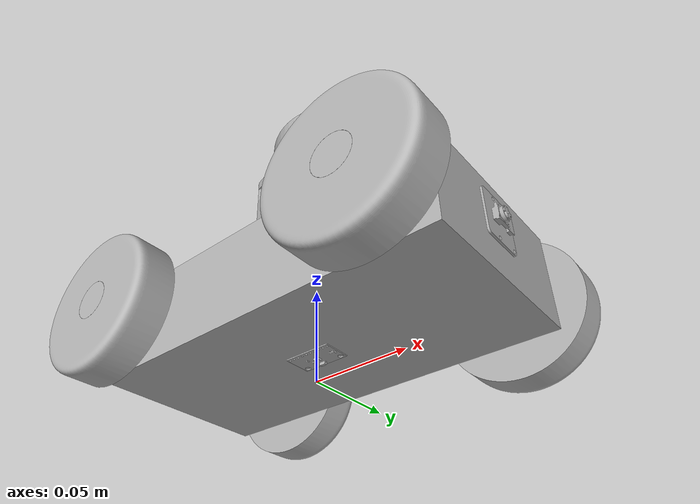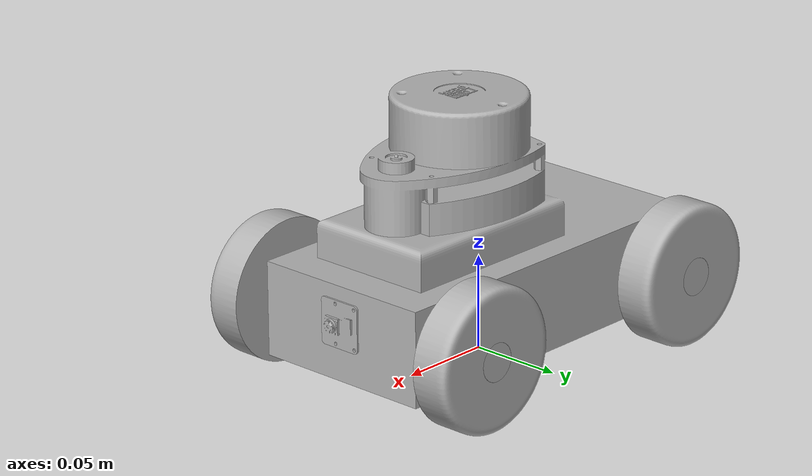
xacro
<?xml version="1.0" ?>
<robot name="ugv2" xmlns:xacro="http://www.ros.org/wiki/xacro">

<xacro:include filename="$(find ugv2_description)/urdf/materials.xacro" />
<xacro:include filename="$(find ugv2_description)/urdf/ugv2.trans" />

<xacro:include filename="$(find ugv2_description)/gazebo/ugv2_materials.gazebo" />
<xacro:include filename="$(find ugv2_description)/gazebo/ugv2_physics.gazebo" />
<xacro:include filename="$(find ugv2_description)/gazebo/ugv2_plugins.gazebo" />

<link name="base_link">
  <inertial>
    <origin rpy="0 0 0" xyz="0.0033907472402908267 -1.2294185660792603e-16 0.04205737762945809"/>
    <mass value="9.291590162574073"/>
    <inertia ixx="0.011185" ixy="0.0" ixz="-0.000965" iyy="0.032552" iyz="0.0" izz="0.037924"/>
  </inertial>
  <visual>
    <origin rpy="0 0 0" xyz="0 0 0"/>
    <geometry>
      <mesh filename="package://ugv2_description/meshes/base_link.stl" scale="0.001 0.001 0.001"/>
    </geometry>
    <material name="silver"/>
  </visual>
  <collision>
    <origin rpy="0 0 0" xyz="0 0 0"/>
    <geometry>
      <mesh filename="package://ugv2_description/meshes/base_link.stl" scale="0.001 0.001 0.001"/>
    </geometry>
  </collision>
</link>

<link name="lidar_1">
  <inertial>
    <origin rpy="0 0 0" xyz="-0.007652767991941433 0.00010612194415757128 0.027402719643241688"/>
    <mass value="1.8747231102330029"/>
    <inertia ixx="0.001113" ixy="1e-06" ixz="0.000122" iyy="0.00152" iyz="4e-06" izz="0.001534"/>
  </inertial>
  <visual>
    <origin rpy="0 0 0" xyz="-0.0275 -0.0 -0.08275"/>
    <geometry>
      <mesh filename="package://ugv2_description/meshes/lidar_1.stl" scale="0.001 0.001 0.001"/>
    </geometry>
    <material name="silver"/>
  </visual>
  <collision>
    <origin rpy="0 0 0" xyz="-0.0275 -0.0 -0.08275"/>
    <geometry>
      <mesh filename="package://ugv2_description/meshes/lidar_1.stl" scale="0.001 0.001 0.001"/>
    </geometry>
  </collision>
</link>

<link name="rb_wheel_1">
  <inertial>
    <origin rpy="0 0 0" xyz="-1.5849974110970777e-11 0.010079338741740565 4.163336342344337e-17"/>
    <mass value="0.6387176905227006"/>
    <inertia ixx="0.00026" ixy="-0.0" ixz="-0.0" iyy="0.000478" iyz="0.0" izz="0.00026"/>
  </inertial>
  <visual>
    <origin rpy="0 0 0" xyz="0.075 0.08 -0.03775"/>
    <geometry>
      <mesh filename="package://ugv2_description/meshes/rb_wheel_1.stl" scale="0.001 0.001 0.001"/>
    </geometry>
    <material name="silver"/>
  </visual>
  <collision>
    <origin rpy="0 0 0" xyz="0.075 0.08 -0.03775"/>
    <geometry>
      <mesh filename="package://ugv2_description/meshes/rb_wheel_1.stl" scale="0.001 0.001 0.001"/>
    </geometry>
  </collision>
</link>

<link name="rf_wheel_1">
  <inertial>
    <origin rpy="0 0 0" xyz="1.568842278310001e-11 0.010079338741740482 1.457167719820518e-16"/>
    <mass value="0.6387176905227065"/>
    <inertia ixx="0.00026" ixy="0.0" ixz="0.0" iyy="0.000478" iyz="0.0" izz="0.00026"/>
  </inertial>
  <visual>
    <origin rpy="0 0 0" xyz="-0.075 0.08 -0.03775"/>
    <geometry>
      <mesh filename="package://ugv2_description/meshes/rf_wheel_1.stl" scale="0.001 0.001 0.001"/>
    </geometry>
    <material name="silver"/>
  </visual>
  <collision>
    <origin rpy="0 0 0" xyz="-0.075 0.08 -0.03775"/>
    <geometry>
      <mesh filename="package://ugv2_description/meshes/rf_wheel_1.stl" scale="0.001 0.001 0.001"/>
    </geometry>
  </collision>
</link>

<link name="lb_wheel_1">
  <inertial>
    <origin rpy="0 0 0" xyz="1.0906087977158307e-09 -0.010079338740724489 -1.249000902703301e-16"/>
    <mass value="0.6387176904141518"/>
    <inertia ixx="0.00026" ixy="0.0" ixz="-0.0" iyy="0.000478" iyz="-0.0" izz="0.00026"/>
  </inertial>
  <visual>
    <origin rpy="0 0 0" xyz="0.075 -0.08 -0.03775"/>
    <geometry>
      <mesh filename="package://ugv2_description/meshes/lb_wheel_1.stl" scale="0.001 0.001 0.001"/>
    </geometry>
    <material name="silver"/>
  </visual>
  <collision>
    <origin rpy="0 0 0" xyz="0.075 -0.08 -0.03775"/>
    <geometry>
      <mesh filename="package://ugv2_description/meshes/lb_wheel_1.stl" scale="0.001 0.001 0.001"/>
    </geometry>
  </collision>
</link>

<link name="lf_wheel_1">
  <inertial>
    <origin rpy="0 0 0" xyz="-1.090447468432565e-09 -0.010079338740724475 -5.204170427930421e-16"/>
    <mass value="0.6387176904144656"/>
    <inertia ixx="0.00026" ixy="-0.0" ixz="0.0" iyy="0.000478" iyz="0.0" izz="0.00026"/>
  </inertial>
  <visual>
    <origin rpy="0 0 0" xyz="-0.075 -0.08 -0.03775"/>
    <geometry>
      <mesh filename="package://ugv2_description/meshes/lf_wheel_1.stl" scale="0.001 0.001 0.001"/>
    </geometry>
    <material name="silver"/>
  </visual>
  <collision>
    <origin rpy="0 0 0" xyz="-0.075 -0.08 -0.03775"/>
    <geometry>
      <mesh filename="package://ugv2_description/meshes/lf_wheel_1.stl" scale="0.001 0.001 0.001"/>
    </geometry>
  </collision>
</link>

<link name="pi_camera_1">
  <inertial>
    <origin rpy="0 0 0" xyz="0.0013912758702941674 -0.00038922935427077444 0.005065651333291829"/>
    <mass value="0.006742869651497955"/>
    <inertia ixx="0.0" ixy="0.0" ixz="-0.0" iyy="0.0" iyz="-0.0" izz="0.0"/>
  </inertial>
  <visual>
    <origin rpy="0 0 0" xyz="-0.1 -0.0 -0.03775"/>
    <geometry>
      <mesh filename="package://ugv2_description/meshes/pi_camera_1.stl" scale="0.001 0.001 0.001"/>
    </geometry>
    <material name="silver"/>
  </visual>
  <collision>
    <origin rpy="0 0 0" xyz="-0.1 -0.0 -0.03775"/>
    <geometry>
      <mesh filename="package://ugv2_description/meshes/pi_camera_1.stl" scale="0.001 0.001 0.001"/>
    </geometry>
  </collision>
</link>

<link name="imu_sensor_1">
  <inertial>
    <origin rpy="0 0 0" xyz="8.182177681428845e-05 -6.318495909852773e-06 0.00015585415981772544"/>
    <mass value="0.0005786974233911097"/>
    <inertia ixx="0.0" ixy="0.0" ixz="0.0" iyy="0.0" iyz="0.0" izz="0.0"/>
  </inertial>
  <visual>
    <origin rpy="0 0 0" xyz="-0.0 -0.0 -0.01275"/>
    <geometry>
      <mesh filename="package://ugv2_description/meshes/imu_sensor_1.stl" scale="0.001 0.001 0.001"/>
    </geometry>
    <material name="silver"/>
  </visual>
  <collision>
    <origin rpy="0 0 0" xyz="-0.0 -0.0 -0.01275"/>
    <geometry>
      <mesh filename="package://ugv2_description/meshes/imu_sensor_1.stl" scale="0.001 0.001 0.001"/>
    </geometry>
  </collision>
</link>

<joint name="lidar_joint" type="fixed">
  <origin rpy="0 0 0" xyz="0.0275 0.0 0.08275"/>
  <parent link="base_link"/>
  <child link="lidar_1"/>
</joint>

<joint name="rb_joint" type="continuous">
  <origin rpy="0 0 0" xyz="-0.075 -0.08 0.03775"/>
  <parent link="base_link"/>
  <child link="rb_wheel_1"/>
  <axis xyz="0.0 1.0 0.0"/>
</joint>

<joint name="rf_joint" type="continuous">
  <origin rpy="0 0 0" xyz="0.075 -0.08 0.03775"/>
  <parent link="base_link"/>
  <child link="rf_wheel_1"/>
  <axis xyz="0.0 1.0 0.0"/>
</joint>

<joint name="lb_joint" type="continuous">
  <origin rpy="0 0 0" xyz="-0.075 0.08 0.03775"/>
  <parent link="base_link"/>
  <child link="lb_wheel_1"/>
  <axis xyz="0.0 1.0 0.0"/>
</joint>

<joint name="lf_joint" type="continuous">
  <origin rpy="0 0 0" xyz="0.075 0.08 0.03775"/>
  <parent link="base_link"/>
  <child link="lf_wheel_1"/>
  <axis xyz="0.0 1.0 0.0"/>
</joint>

<joint name="pi_joint" type="fixed">
  <origin rpy="0 0 0" xyz="0.1 0.0 0.03775"/>
  <parent link="base_link"/>
  <child link="pi_camera_1"/>
</joint>

<joint name="imu_joint" type="fixed">
  <origin rpy="0 0 0" xyz="0.0 0.0 0.01275"/>
  <parent link="base_link"/>
  <child link="imu_sensor_1"/>
</joint>

</robot>

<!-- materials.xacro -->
<robot name="ugv2" xmlns:xacro="http://www.ros.org/wiki/xacro" >

<material name="silver">
  <color rgba="0.700 0.700 0.700 1.000"/>
</material>

</robot>

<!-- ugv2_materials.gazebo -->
<robot name="ugv2" xmlns:xacro="http://www.ros.org/wiki/xacro" >

<xacro:property name="body_color" value="Gazebo/FlatBlack" />
<xacro:property name="wheel_color" value="Gazebo/Gold" />
<xacro:property name="sensor_color" value="Gazebo/Grey" />

<gazebo reference="base_link">
  <material>${body_color}</material>
</gazebo>

<gazebo reference="lidar_1">
  <material>${sensor_color}</material>
</gazebo>

<gazebo reference="rb_wheel_1">
  <material>${wheel_color}</material>
</gazebo>

<gazebo reference="rf_wheel_1">
  <material>${wheel_color}</material>
</gazebo>

<gazebo reference="lb_wheel_1">
  <material>${wheel_color}</material>
</gazebo>

<gazebo reference="lf_wheel_1">
  <material>${wheel_color}</material>
</gazebo>

<gazebo reference="pi_camera_1">
  <material>${sensor_color}</material>
</gazebo>

<gazebo reference="imu_sensor_1">
  <material>${sensor_color}</material>
</gazebo>

</robot>
